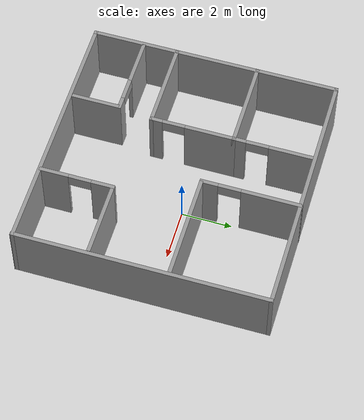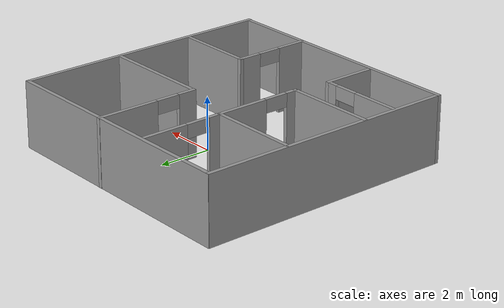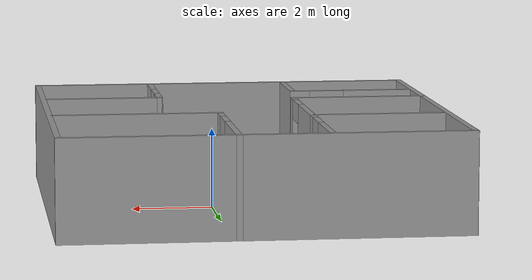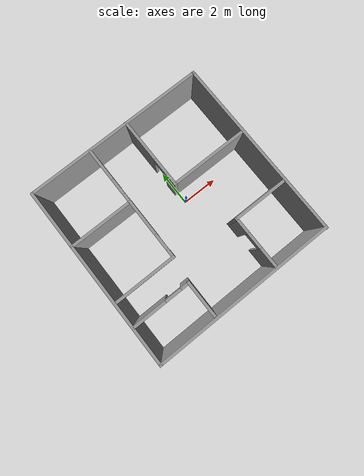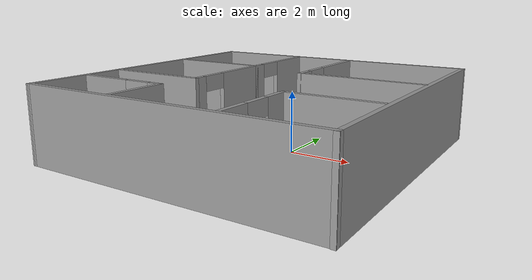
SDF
<?xml version='1.0'?>
<sdf version='1.7'>
  <model name='test.world'>
    <pose>-0.812775 -0.366925 0 0 -0 0</pose>
    <link name='Wall_0'>
      <collision name='Wall_0_Collision'>
        <geometry>
          <box>
            <size>9.98022 0.15 2.5</size>
          </box>
        </geometry>
        <pose>0 0 1.25 0 -0 0</pose>
      </collision>
      <visual name='Wall_0_Visual'>
        <pose>0 0 1.25 0 -0 0</pose>
        <geometry>
          <box>
            <size>9.98022 0.15 2.5</size>
          </box>
        </geometry>
        <material>
          <script>
            <uri>file://media/materials/scripts/gazebo.material</uri>
            <name>Gazebo/Grey</name>
          </script>
          <ambient>1 1 1 1</ambient>
        </material>
        <meta>
          <layer>0</layer>
        </meta>
      </visual>
      <pose>-0 -4.92818 0 0 -0 -3.13955</pose>
    </link>
    <link name='Wall_2'>
      <collision name='Wall_2_Collision'>
        <geometry>
          <box>
            <size>10 0.15 2.5</size>
          </box>
        </geometry>
        <pose>0 0 1.25 0 -0 0</pose>
      </collision>
      <visual name='Wall_2_Visual'>
        <pose>0 0 1.25 0 -0 0</pose>
        <geometry>
          <box>
            <size>10 0.15 2.5</size>
          </box>
        </geometry>
        <material>
          <script>
            <uri>file://media/materials/scripts/gazebo.material</uri>
            <name>Gazebo/Grey</name>
          </script>
          <ambient>1 1 1 1</ambient>
        </material>
        <meta>
          <layer>0</layer>
        </meta>
      </visual>
      <pose>-4.91494 -0.013232 0 0 -0 1.5708</pose>
    </link>
    <link name='Wall_26'>
      <collision name='Wall_26_Collision'>
        <geometry>
          <box>
            <size>3.5 0.15 2.5</size>
          </box>
        </geometry>
        <pose>0 0 1.25 0 -0 0</pose>
      </collision>
      <visual name='Wall_26_Visual'>
        <pose>0 0 1.25 0 -0 0</pose>
        <geometry>
          <box>
            <size>3.5 0.15 2.5</size>
          </box>
        </geometry>
        <material>
          <script>
            <uri>file://media/materials/scripts/gazebo.material</uri>
            <name>Gazebo/Grey</name>
          </script>
          <ambient>1 1 1 1</ambient>
        </material>
        <meta>
          <layer>0</layer>
        </meta>
      </visual>
      <pose>-3.21793 1.73158 0 0 -0 3.14159</pose>
    </link>
    <link name='Wall_28'>
      <pose>-1.52282 3.28157 0 0 -0 1.5708</pose>
      <visual name='Wall_28_Visual_0'>
        <pose>-1.34544 0 1.25 0 -0 0</pose>
        <geometry>
          <box>
            <size>0.559117 0.15 2.5</size>
          </box>
        </geometry>
        <material>
          <script>
            <uri>file://media/materials/scripts/gazebo.material</uri>
            <name>Gazebo/Grey</name>
          </script>
          <ambient>1 1 1 1</ambient>
        </material>
        <meta>
          <layer>0</layer>
        </meta>
      </visual>
      <collision name='Wall_28_Collision_0'>
        <geometry>
          <box>
            <size>0.559117 0.15 2.5</size>
          </box>
        </geometry>
        <pose>-1.34544 0 1.25 0 -0 0</pose>
      </collision>
      <visual name='Wall_28_Visual_1'>
        <pose>0.729558 0 1.25 0 -0 0</pose>
        <geometry>
          <box>
            <size>1.79088 0.15 2.5</size>
          </box>
        </geometry>
        <material>
          <script>
            <uri>file://media/materials/scripts/gazebo.material</uri>
            <name>Gazebo/Grey</name>
          </script>
          <ambient>1 1 1 1</ambient>
        </material>
        <meta>
          <layer>0</layer>
        </meta>
      </visual>
      <collision name='Wall_28_Collision_1'>
        <geometry>
          <box>
            <size>1.79088 0.15 2.5</size>
          </box>
        </geometry>
        <pose>0.729558 0 1.25 0 -0 0</pose>
      </collision>
      <visual name='Wall_28_Visual_2'>
        <pose>-0.615883 0 2.25 0 -0 0</pose>
        <geometry>
          <box>
            <size>0.9 0.15 0.5</size>
          </box>
        </geometry>
        <material>
          <script>
            <uri>file://media/materials/scripts/gazebo.material</uri>
            <name>Gazebo/Grey</name>
          </script>
          <ambient>1 1 1 1</ambient>
        </material>
        <meta>
          <layer>0</layer>
        </meta>
      </visual>
      <collision name='Wall_28_Collision_2'>
        <geometry>
          <box>
            <size>0.9 0.15 0.5</size>
          </box>
        </geometry>
        <pose>-0.615883 0 2.25 0 -0 0</pose>
      </collision>
    </link>
    <link name='Wall_30'>
      <pose>0.685421 3.01341 0 0 -0 -1.5708</pose>
      <visual name='Wall_30_Visual_0'>
        <pose>-0.81174 0 1.25 0 -0 0</pose>
        <geometry>
          <box>
            <size>2.37652 0.15 2.5</size>
          </box>
        </geometry>
        <material>
          <script>
            <uri>file://media/materials/scripts/gazebo.material</uri>
            <name>Gazebo/Grey</name>
          </script>
          <ambient>1 1 1 1</ambient>
        </material>
        <meta>
          <layer>0</layer>
        </meta>
      </visual>
      <collision name='Wall_30_Collision_0'>
        <geometry>
          <box>
            <size>2.37652 0.15 2.5</size>
          </box>
        </geometry>
        <pose>-0.81174 0 1.25 0 -0 0</pose>
      </collision>
      <visual name='Wall_30_Visual_1'>
        <pose>1.63826 0 1.25 0 -0 0</pose>
        <geometry>
          <box>
            <size>0.72348 0.15 2.5</size>
          </box>
        </geometry>
        <material>
          <script>
            <uri>file://media/materials/scripts/gazebo.material</uri>
            <name>Gazebo/Grey</name>
          </script>
          <ambient>1 1 1 1</ambient>
        </material>
        <meta>
          <layer>0</layer>
        </meta>
      </visual>
      <collision name='Wall_30_Collision_1'>
        <geometry>
          <box>
            <size>0.72348 0.15 2.5</size>
          </box>
        </geometry>
        <pose>1.63826 0 1.25 0 -0 0</pose>
      </collision>
      <visual name='Wall_30_Visual_2'>
        <pose>0.82652 0 2.25 0 -0 0</pose>
        <geometry>
          <box>
            <size>0.9 0.15 0.5</size>
          </box>
        </geometry>
        <material>
          <script>
            <uri>file://media/materials/scripts/gazebo.material</uri>
            <name>Gazebo/Grey</name>
          </script>
          <ambient>1 1 1 1</ambient>
        </material>
        <meta>
          <layer>0</layer>
        </meta>
      </visual>
      <collision name='Wall_30_Collision_2'>
        <geometry>
          <box>
            <size>0.9 0.15 0.5</size>
          </box>
        </geometry>
        <pose>0.82652 0 2.25 0 -0 0</pose>
      </collision>
    </link>
    <link name='Wall_31'>
      <collision name='Wall_31_Collision'>
        <geometry>
          <box>
            <size>4.25 0.15 2.5</size>
          </box>
        </geometry>
        <pose>0 0 1.25 0 -0 0</pose>
      </collision>
      <visual name='Wall_31_Visual'>
        <pose>0 0 1.25 0 -0 0</pose>
        <geometry>
          <box>
            <size>4.25 0.15 2.5</size>
          </box>
        </geometry>
        <material>
          <script>
            <uri>file://media/materials/scripts/gazebo.material</uri>
            <name>Gazebo/Grey</name>
          </script>
          <ambient>1 1 1 1</ambient>
        </material>
        <meta>
          <layer>0</layer>
        </meta>
      </visual>
      <pose>2.73542 1.08841 0 0 -0 0</pose>
    </link>
    <link name='Wall_34'>
      <pose>-1.52282 0.099072 0 0 -0 -1.5708</pose>
      <visual name='Wall_34_Visual_0'>
        <pose>-0.69442 0 1.25 0 -0 0</pose>
        <geometry>
          <box>
            <size>2.02617 0.15 2.5</size>
          </box>
        </geometry>
        <material>
          <script>
            <uri>file://media/materials/scripts/gazebo.material</uri>
            <name>Gazebo/Grey</name>
          </script>
          <ambient>1 1 1 1</ambient>
        </material>
        <meta>
          <layer>0</layer>
        </meta>
      </visual>
      <collision name='Wall_34_Collision_0'>
        <geometry>
          <box>
            <size>2.02617 0.15 2.5</size>
          </box>
        </geometry>
        <pose>-0.69442 0 1.25 0 -0 0</pose>
      </collision>
      <visual name='Wall_34_Visual_1'>
        <pose>1.46308 0 1.25 0 -0 0</pose>
        <geometry>
          <box>
            <size>0.488839 0.15 2.5</size>
          </box>
        </geometry>
        <material>
          <script>
            <uri>file://media/materials/scripts/gazebo.material</uri>
            <name>Gazebo/Grey</name>
          </script>
          <ambient>1 1 1 1</ambient>
        </material>
        <meta>
          <layer>0</layer>
        </meta>
      </visual>
      <collision name='Wall_34_Collision_1'>
        <geometry>
          <box>
            <size>0.488839 0.15 2.5</size>
          </box>
        </geometry>
        <pose>1.46308 0 1.25 0 -0 0</pose>
      </collision>
      <visual name='Wall_34_Visual_2'>
        <pose>0.768663 0 2.25 0 -0 0</pose>
        <geometry>
          <box>
            <size>0.9 0.15 0.5</size>
          </box>
        </geometry>
        <material>
          <script>
            <uri>file://media/materials/scripts/gazebo.material</uri>
            <name>Gazebo/Grey</name>
          </script>
          <ambient>1 1 1 1</ambient>
        </material>
        <meta>
          <layer>0</layer>
        </meta>
      </visual>
      <collision name='Wall_34_Collision_2'>
        <geometry>
          <box>
            <size>0.9 0.15 0.5</size>
          </box>
        </geometry>
        <pose>0.768663 0 2.25 0 -0 0</pose>
      </collision>
    </link>
    <link name='Wall_35'>
      <collision name='Wall_35_Collision'>
        <geometry>
          <box>
            <size>3.5 0.15 2.5</size>
          </box>
        </geometry>
        <pose>0 0 1.25 0 -0 0</pose>
      </collision>
      <visual name='Wall_35_Visual'>
        <pose>0 0 1.25 0 -0 0</pose>
        <geometry>
          <box>
            <size>3.5 0.15 2.5</size>
          </box>
        </geometry>
        <material>
          <script>
            <uri>file://media/materials/scripts/gazebo.material</uri>
            <name>Gazebo/Grey</name>
          </script>
          <ambient>1 1 1 1</ambient>
        </material>
        <meta>
          <layer>0</layer>
        </meta>
      </visual>
      <pose>-3.19782 -1.56003 0 0 -0 3.14159</pose>
    </link>
    <link name='Wall_37'>
      <pose>-3.25174 -2.92035 0 0 -0 0</pose>
      <visual name='Wall_37_Visual_0'>
        <pose>-0.708592 0 1.25 0 -0 0</pose>
        <geometry>
          <box>
            <size>1.83282 0.15 2.5</size>
          </box>
        </geometry>
        <material>
          <script>
            <uri>file://media/materials/scripts/gazebo.material</uri>
            <name>Gazebo/Grey</name>
          </script>
          <ambient>1 1 1 1</ambient>
        </material>
        <meta>
          <layer>0</layer>
        </meta>
      </visual>
      <collision name='Wall_37_Collision_0'>
        <geometry>
          <box>
            <size>1.83282 0.15 2.5</size>
          </box>
        </geometry>
        <pose>-0.708592 0 1.25 0 -0 0</pose>
      </collision>
      <visual name='Wall_37_Visual_1'>
        <pose>1.36641 0 1.25 0 -0 0</pose>
        <geometry>
          <box>
            <size>0.517184 0.15 2.5</size>
          </box>
        </geometry>
        <material>
          <script>
            <uri>file://media/materials/scripts/gazebo.material</uri>
            <name>Gazebo/Grey</name>
          </script>
          <ambient>1 1 1 1</ambient>
        </material>
        <meta>
          <layer>0</layer>
        </meta>
      </visual>
      <collision name='Wall_37_Collision_1'>
        <geometry>
          <box>
            <size>0.517184 0.15 2.5</size>
          </box>
        </geometry>
        <pose>1.36641 0 1.25 0 -0 0</pose>
      </collision>
      <visual name='Wall_37_Visual_2'>
        <pose>0.657816 0 2.25 0 -0 0</pose>
        <geometry>
          <box>
            <size>0.9 0.15 0.5</size>
          </box>
        </geometry>
        <material>
          <script>
            <uri>file://media/materials/scripts/gazebo.material</uri>
            <name>Gazebo/Grey</name>
          </script>
          <ambient>1 1 1 1</ambient>
        </material>
        <meta>
          <layer>0</layer>
        </meta>
      </visual>
      <collision name='Wall_37_Collision_2'>
        <geometry>
          <box>
            <size>0.9 0.15 0.5</size>
          </box>
        </geometry>
        <pose>0.657816 0 2.25 0 -0 0</pose>
      </collision>
    </link>
    <link name='Wall_38'>
      <collision name='Wall_38_Collision'>
        <geometry>
          <box>
            <size>2 0.15 2.5</size>
          </box>
        </geometry>
        <pose>0 0 1.25 0 -0 0</pose>
      </collision>
      <visual name='Wall_38_Visual'>
        <pose>0 0 1.25 0 -0 0</pose>
        <geometry>
          <box>
            <size>2 0.15 2.5</size>
          </box>
        </geometry>
        <material>
          <script>
            <uri>file://media/materials/scripts/gazebo.material</uri>
            <name>Gazebo/Grey</name>
          </script>
          <ambient>1 1 1 1</ambient>
        </material>
        <meta>
          <layer>0</layer>
        </meta>
      </visual>
      <pose>-1.70174 -3.84535 0 0 -0 -1.5708</pose>
    </link>
    <link name='Wall_40'>
      <pose>1.90151 -3.44094 0 0 -0 -1.5708</pose>
      <visual name='Wall_40_Visual_0'>
        <pose>-1.0358 0 1.25 0 -0 0</pose>
        <geometry>
          <box>
            <size>0.92841 0.15 2.5</size>
          </box>
        </geometry>
        <material>
          <script>
            <uri>file://media/materials/scripts/gazebo.material</uri>
            <name>Gazebo/Grey</name>
          </script>
          <ambient>1 1 1 1</ambient>
        </material>
        <meta>
          <layer>0</layer>
        </meta>
      </visual>
      <collision name='Wall_40_Collision_0'>
        <geometry>
          <box>
            <size>0.92841 0.15 2.5</size>
          </box>
        </geometry>
        <pose>-1.0358 0 1.25 0 -0 0</pose>
      </collision>
      <visual name='Wall_40_Visual_1'>
        <pose>0.914205 0 1.25 0 -0 0</pose>
        <geometry>
          <box>
            <size>1.17159 0.15 2.5</size>
          </box>
        </geometry>
        <material>
          <script>
            <uri>file://media/materials/scripts/gazebo.material</uri>
            <name>Gazebo/Grey</name>
          </script>
          <ambient>1 1 1 1</ambient>
        </material>
        <meta>
          <layer>0</layer>
        </meta>
      </visual>
      <collision name='Wall_40_Collision_1'>
        <geometry>
          <box>
            <size>1.17159 0.15 2.5</size>
          </box>
        </geometry>
        <pose>0.914205 0 1.25 0 -0 0</pose>
      </collision>
      <visual name='Wall_40_Visual_2'>
        <pose>-0.12159 0 2.25 0 -0 0</pose>
        <geometry>
          <box>
            <size>0.9 0.15 0.5</size>
          </box>
        </geometry>
        <material>
          <script>
            <uri>file://media/materials/scripts/gazebo.material</uri>
            <name>Gazebo/Grey</name>
          </script>
          <ambient>1 1 1 1</ambient>
        </material>
        <meta>
          <layer>0</layer>
        </meta>
      </visual>
      <collision name='Wall_40_Collision_2'>
        <geometry>
          <box>
            <size>0.9 0.15 0.5</size>
          </box>
        </geometry>
        <pose>-0.12159 0 2.25 0 -0 0</pose>
      </collision>
    </link>
    <link name='Wall_42'>
      <collision name='Wall_42_Collision'>
        <geometry>
          <box>
            <size>3 0.15 2.5</size>
          </box>
        </geometry>
        <pose>0 0 1.25 0 -0 0</pose>
      </collision>
      <visual name='Wall_42_Visual'>
        <pose>0 0 1.25 0 -0 0</pose>
        <geometry>
          <box>
            <size>3 0.15 2.5</size>
          </box>
        </geometry>
        <material>
          <script>
            <uri>file://media/materials/scripts/gazebo.material</uri>
            <name>Gazebo/Grey</name>
          </script>
          <ambient>1 1 1 1</ambient>
        </material>
        <meta>
          <layer>0</layer>
        </meta>
      </visual>
      <pose>3.32651 -2.01594 0 0 -0 0</pose>
    </link>
    <link name='Wall_7'>
      <collision name='Wall_7_Collision'>
        <geometry>
          <box>
            <size>10.0057 0.15 2.5</size>
          </box>
        </geometry>
        <pose>0 0 1.25 0 -0 0</pose>
      </collision>
      <visual name='Wall_7_Visual'>
        <pose>0 0 1.25 0 -0 0</pose>
        <geometry>
          <box>
            <size>10.0057 0.15 2.5</size>
          </box>
        </geometry>
        <material>
          <script>
            <uri>file://media/materials/scripts/gazebo.material</uri>
            <name>Gazebo/Grey</name>
          </script>
          <ambient>1 1 1 1</ambient>
        </material>
        <meta>
          <layer>0</layer>
        </meta>
      </visual>
      <pose>4.90338 -0.010412 0 0 -0 1.57314</pose>
    </link>
    <link name='Wall_8'>
      <collision name='Wall_8_Collision'>
        <geometry>
          <box>
            <size>9.94524 0.15 2.5</size>
          </box>
        </geometry>
        <pose>0 0 1.25 0 -0 0</pose>
      </collision>
      <visual name='Wall_8_Visual'>
        <pose>0 0 1.25 0 -0 0</pose>
        <geometry>
          <box>
            <size>9.94524 0.15 2.5</size>
          </box>
        </geometry>
        <material>
          <script>
            <uri>file://media/materials/scripts/gazebo.material</uri>
            <name>Gazebo/Grey</name>
          </script>
          <ambient>1 1 1 1</ambient>
        </material>
        <meta>
          <layer>0</layer>
        </meta>
      </visual>
      <pose>-0.005641 4.92746 0 0 -0 -3.13954</pose>
    </link>
    <static>1</static>
  </model>
</sdf>
